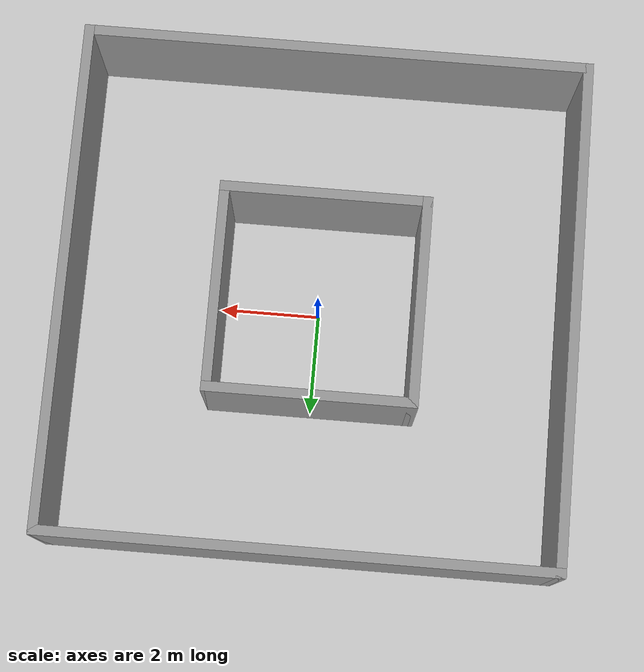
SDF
<?xml version="1.0" ?>
<sdf version="1.4">
  <world name="default">
    <!-- A global light source -->
    <include>
      <uri>model://sun</uri>
    </include>
    <!-- A ground plane -->
    <include>
      <uri>model://ground_plane</uri>
    </include>
    <!-- Own physics settings to speed up simulation -->
    <physics type='ode'>
      <max_step_size>0.01</max_step_size>
      <real_time_factor>1</real_time_factor>
      <real_time_update_rate>100</real_time_update_rate>
      <gravity>0 0 -9.8</gravity>
    </physics>
    <model name='prison'>
      <link name='Wall_0'>
        <collision name='Wall_0_Collision'>
          <geometry>
            <box>
              <size>10.2 0.2 2.5</size>
            </box>
          </geometry>
          <pose>0 0 1.25 0 -0 0</pose>
        </collision>
        <visual name='Wall_0_Visual'>
          <pose>0 0 1.25 0 -0 0</pose>
          <geometry>
            <box>
              <size>10.2 0.2 2.5</size>
            </box>
          </geometry>
          <material>
            <script>
              <uri>file://media/materials/scripts/gazebo.material</uri>
              <name>Gazebo/Grey</name>
            </script>
          </material>
        </visual>
        <velocity_decay>
          <linear>0</linear>
          <angular>0</angular>
        </velocity_decay>
        <pose>-5 0 0 0 -0 1.5708</pose>
      </link>
      <link name='Wall_10'>
        <collision name='Wall_10_Collision'>
          <geometry>
            <box>
              <size>10.2 0.2 2.5</size>
            </box>
          </geometry>
          <pose>0 0 1.25 0 -0 0</pose>
        </collision>
        <visual name='Wall_10_Visual'>
          <pose>0 0 1.25 0 -0 0</pose>
          <geometry>
            <box>
              <size>10.2 0.2 2.5</size>
            </box>
          </geometry>
          <material>
            <script>
              <uri>file://media/materials/scripts/gazebo.material</uri>
              <name>Gazebo/Grey</name>
            </script>
          </material>
        </visual>
        <velocity_decay>
          <linear>0</linear>
          <angular>0</angular>
        </velocity_decay>
        <pose>5 0 0 0 -0 1.5708</pose>
      </link>
      <link name='Wall_12'>
        <collision name='Wall_12_Collision'>
          <geometry>
            <box>
              <size>4.2 0.2 2.5</size>
            </box>
          </geometry>
          <pose>0 0 1.25 0 -0 0</pose>
        </collision>
        <visual name='Wall_12_Visual'>
          <pose>0 0 1.25 0 -0 0</pose>
          <geometry>
            <box>
              <size>4.2 0.2 2.5</size>
            </box>
          </geometry>
          <material>
            <script>
              <uri>file://media/materials/scripts/gazebo.material</uri>
              <name>Gazebo/Grey</name>
            </script>
          </material>
        </visual>
        <velocity_decay>
          <linear>0</linear>
          <angular>0</angular>
        </velocity_decay>
        <pose>0 2 0 0 -0 0</pose>
      </link>
      <link name='Wall_14'>
        <collision name='Wall_14_Collision'>
          <geometry>
            <box>
              <size>4.2 0.2 2.5</size>
            </box>
          </geometry>
          <pose>0 0 1.25 0 -0 0</pose>
        </collision>
        <visual name='Wall_14_Visual'>
          <pose>0 0 1.25 0 -0 0</pose>
          <geometry>
            <box>
              <size>4.2 0.2 2.5</size>
            </box>
          </geometry>
          <material>
            <script>
              <uri>file://media/materials/scripts/gazebo.material</uri>
              <name>Gazebo/Grey</name>
            </script>
          </material>
        </visual>
        <velocity_decay>
          <linear>0</linear>
          <angular>0</angular>
        </velocity_decay>
        <pose>-2 0 0 0 -0 1.5708</pose>
      </link>
      <link name='Wall_17'>
        <collision name='Wall_17_Collision'>
          <geometry>
            <box>
              <size>4.2 0.2 2.5</size>
            </box>
          </geometry>
          <pose>0 0 1.25 0 -0 0</pose>
        </collision>
        <visual name='Wall_17_Visual'>
          <pose>0 0 1.25 0 -0 0</pose>
          <geometry>
            <box>
              <size>4.2 0.2 2.5</size>
            </box>
          </geometry>
          <material>
            <script>
              <uri>file://media/materials/scripts/gazebo.material</uri>
              <name>Gazebo/Grey</name>
            </script>
          </material>
        </visual>
        <velocity_decay>
          <linear>0</linear>
          <angular>0</angular>
        </velocity_decay>
        <pose>2 0 0 0 -0 1.5708</pose>
      </link>
      <link name='Wall_19'>
        <collision name='Wall_19_Collision'>
          <geometry>
            <box>
              <size>4.2 0.2 2.5</size>
            </box>
          </geometry>
          <pose>0 0 1.25 0 -0 0</pose>
        </collision>
        <visual name='Wall_19_Visual'>
          <pose>0 0 1.25 0 -0 0</pose>
          <geometry>
            <box>
              <size>4.2 0.2 2.5</size>
            </box>
          </geometry>
          <material>
            <script>
              <uri>file://media/materials/scripts/gazebo.material</uri>
              <name>Gazebo/Grey</name>
            </script>
          </material>
        </visual>
        <velocity_decay>
          <linear>0</linear>
          <angular>0</angular>
        </velocity_decay>
        <pose>0 -2 0 0 -0 0</pose>
      </link>
      <link name='Wall_2'>
        <collision name='Wall_2_Collision'>
          <geometry>
            <box>
              <size>10.2 0.2 2.5</size>
            </box>
          </geometry>
          <pose>0 0 1.25 0 -0 0</pose>
        </collision>
        <visual name='Wall_2_Visual'>
          <pose>0 0 1.25 0 -0 0</pose>
          <geometry>
            <box>
              <size>10.2 0.2 2.5</size>
            </box>
          </geometry>
          <material>
            <script>
              <uri>file://media/materials/scripts/gazebo.material</uri>
              <name>Gazebo/Grey</name>
            </script>
          </material>
        </visual>
        <velocity_decay>
          <linear>0</linear>
          <angular>0</angular>
        </velocity_decay>
        <pose>0 5 0 0 -0 0</pose>
      </link>
      <link name='Wall_7'>
        <collision name='Wall_7_Collision'>
          <geometry>
            <box>
              <size>10.2 0.2 2.5</size>
            </box>
          </geometry>
          <pose>0 0 1.25 0 -0 0</pose>
        </collision>
        <visual name='Wall_7_Visual'>
          <pose>0 0 1.25 0 -0 0</pose>
          <geometry>
            <box>
              <size>10.2 0.2 2.5</size>
            </box>
          </geometry>
          <material>
            <script>
              <uri>file://media/materials/scripts/gazebo.material</uri>
              <name>Gazebo/Grey</name>
            </script>
          </material>
        </visual>
        <velocity_decay>
          <linear>0</linear>
          <angular>0</angular>
        </velocity_decay>
        <pose>0 -5 0 0 -0 0</pose>
      </link>
      <static>1</static>
    </model>
  </world>
</sdf>
